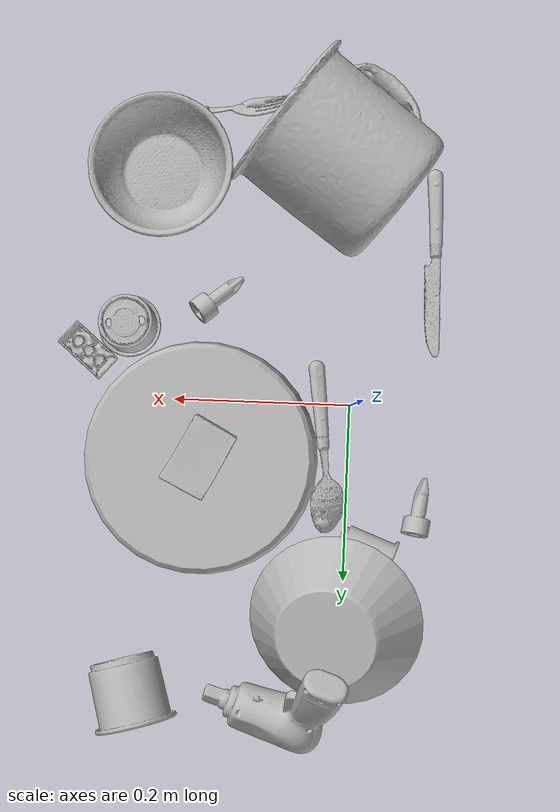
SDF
<sdf version="1.4">
  <world name="default">
    <light name="light1" type="point">
      <pose>0 0 1 0 0 0</pose>
      <diffuse>3 3 3 1</diffuse>
      <specular>3 3 3 1</specular>
    </light>
    <light name="light2" type="point">
      <pose>0 0.5 2 0 0 0</pose>
      <diffuse>1 1 1 1</diffuse>
      <specular>1 1 1 1</specular>
    </light>
    <light name="light3" type="point">
      <pose>0 0.5 2 0 0 0</pose>
      <diffuse>3 3 3 1</diffuse>
      <specular>3 3 3 1</specular>
    </light>
    <scene>
      <ambient>0.7 0.7 0.7</ambient>
    </scene>
    <model name="plate1">
      <link name="link_plate1">
        <collision name="default">
          <geometry>
            <mesh>
              <uri>model://pan_tefal/collision_meshes/collision.obj</uri>
              <scale>1.0 1.0 1.0</scale>
            </mesh>
          </geometry>
          <surface>
            <friction>
              <ode>
                <mu>0.5</mu>
                <mu2>0.5</mu2>
              </ode>
            </friction>
          <contact>
        <ode>
            <max_vel>0</max_vel>
            <min_depth>0.0001</min_depth>
            <kp>1e8</kp>
        </ode>
    </contact></surface>
        </collision>
        <visual name="default">
          <geometry>
            <mesh>
              <uri>model://pan_tefal/visual_meshes/visual.dae</uri>
              <scale>1.0 1.0 1.0</scale>
            </mesh>
          </geometry>
        </visual>
        <inertial>
          <mass>1.356081485748291</mass>
          <pose>-0.00018001878925133497 3.2792810088722035e-05 -0.008514934219419956 0.000819032333381865 -0.0003301471985614655 -0.33185384828338066</pose>
          <inertia>
            <ixx>0.009360965</ixx>
            <iyy>0.009421317</iyy>
            <izz>0.017231734</izz>
            <ixy>0</ixy>
            <ixz>0</ixz>
            <iyz>0</iyz>
          </inertia>
        </inertial>
      </link>
      <pose>0.1661146879196167 0.06535527855157852 0.037822019308805466 -3.141592650754992 6.444880838148838e-09 1.4591970775201388</pose>
    </model>
    <model name="cup1">
      <link name="link_cup1">
        <collision name="default">
          <geometry>
            <mesh>
              <uri>model://mug/collision_meshes/collision.obj</uri>
              <scale>2.0 2.0 2.0</scale>
            </mesh>
          </geometry>
          <surface>
            <friction>
              <ode>
                <mu>0.5</mu>
                <mu2>0.5</mu2>
              </ode>
            </friction>
          <contact>
        <ode>
            <max_vel>0</max_vel>
            <min_depth>0.0001</min_depth>
            <kp>1e8</kp>
        </ode>
    </contact></surface>
        </collision>
        <visual name="default">
          <geometry>
            <mesh>
              <uri>model://mug/visual_meshes/visual.dae</uri>
              <scale>2.0 2.0 2.0</scale>
            </mesh>
          </geometry>
        </visual>
        <inertial>
          <mass>1.425228476524353</mass>
          <pose>0.019143342971801758 0.0016286519821733236 -0.021894657984375954 -0.12983169455958588 0.08737743422724535 0.05507285753370488</pose>
          <inertia>
            <ixx>0.005662833</ixx>
            <iyy>0.0063250507</iyy>
            <izz>0.0073150056</izz>
            <ixy>0</ixy>
            <ixz>0</ixz>
            <iyz>0</iyz>
          </inertia>
        </inertial>
      </link>
      <pose>0.013271942734718323 -0.2834729552268982 0.07338308542966843 1.4728035215127675 -0.5622062527593443 0.9913323598921019</pose>
    </model>
    <model name="silverware1">
      <link name="link_silverware1">
        <collision name="default">
          <geometry>
            <mesh>
              <uri>model://spoon/collision_meshes/collision.obj</uri>
              <scale>1.0 1.0 1.0</scale>
            </mesh>
          </geometry>
          <surface>
            <friction>
              <ode>
                <mu>0.5</mu>
                <mu2>0.5</mu2>
              </ode>
            </friction>
          <contact>
        <ode>
            <max_vel>0</max_vel>
            <min_depth>0.0001</min_depth>
            <kp>1e8</kp>
        </ode>
    </contact></surface>
        </collision>
        <visual name="default">
          <geometry>
            <mesh>
              <uri>model://spoon/visual_meshes/visual.dae</uri>
              <scale>1.0 1.0 1.0</scale>
            </mesh>
          </geometry>
        </visual>
        <inertial>
          <mass>0.031423501670360565</mass>
          <pose>-0.005526318680495024 -0.0016034176805987954 -0.000727165665011853 0.035217765619004186 -0.03906586018731898 0.006150610672177042</pose>
          <inertia>
            <ixx>1.7478262e-06</ixx>
            <iyy>0.0001195654</iyy>
            <izz>0.000120427336</izz>
            <ixy>0</ixy>
            <ixz>0</ixz>
            <iyz>0</iyz>
          </inertia>
        </inertial>
      </link>
      <pose>0.030557701364159584 0.048839714378118515 0.011887849308550358 2.797820599941204 -0.06190300147029589 1.6918736391216904</pose>
    </model>
    <model name="silverware2">
      <link name="link_silverware2">
        <collision name="default">
          <geometry>
            <mesh>
              <uri>model://fork/collision_meshes/collision.obj</uri>
              <scale>1.0 1.0 1.0</scale>
            </mesh>
          </geometry>
          <surface>
            <friction>
              <ode>
                <mu>0.5</mu>
                <mu2>0.5</mu2>
              </ode>
            </friction>
          <contact>
        <ode>
            <max_vel>0</max_vel>
            <min_depth>0.0001</min_depth>
            <kp>1e8</kp>
        </ode>
    </contact></surface>
        </collision>
        <visual name="default">
          <geometry>
            <mesh>
              <uri>model://fork/visual_meshes/visual.dae</uri>
              <scale>1.0 1.0 1.0</scale>
            </mesh>
          </geometry>
        </visual>
        <inertial>
          <mass>0.02368462271988392</mass>
          <pose>-0.02957003191113472 0.00046588238910771906 0.00032188621116802096 -0.013550757689210725 -0.010977831639922976 0.014453892765665301</pose>
          <inertia>
            <ixx>8.3028004e-07</ixx>
            <iyy>6.183376e-05</iyy>
            <izz>6.220513e-05</izz>
            <ixy>0</ixy>
            <ixz>0</ixz>
            <iyz>0</iyz>
          </inertia>
        </inertial>
      </link>
      <pose>0.1749652624130249 -0.3295922577381134 0.009330951608717442 -0.6521369972326789 -0.001711076561257836 -3.030643946384857</pose>
    </model>
    <model name="silverware3">
      <link name="link_silverware3">
        <collision name="default">
          <geometry>
            <mesh>
              <uri>model://knife/collision_meshes/collision.obj</uri>
              <scale>1.0 1.0 1.0</scale>
            </mesh>
          </geometry>
          <surface>
            <friction>
              <ode>
                <mu>0.5</mu>
                <mu2>0.5</mu2>
              </ode>
            </friction>
          <contact>
        <ode>
            <max_vel>0</max_vel>
            <min_depth>0.0001</min_depth>
            <kp>1e8</kp>
        </ode>
    </contact></surface>
        </collision>
        <visual name="default">
          <geometry>
            <mesh>
              <uri>model://knife/visual_meshes/visual.dae</uri>
              <scale>1.0 1.0 1.0</scale>
            </mesh>
          </geometry>
        </visual>
        <inertial>
          <mass>0.023530498147010803</mass>
          <pose>-0.023785250261425972 0.0015275124460458755 5.062020863988437e-05 0.07305757972864607 0.01724841573343299 -0.007409825279630946</pose>
          <inertia>
            <ixx>6.678909e-07</ixx>
            <iyy>9.040038e-05</iyy>
            <izz>9.0615475e-05</izz>
            <ixy>0</ixy>
            <ixz>0</ixz>
            <iyz>0</iyz>
          </inertia>
        </inertial>
      </link>
      <pose>-0.0895133838057518 -0.16559889912605286 0.007946522906422615 -0.023907890482071134 -0.014542512977394584 1.5890617145269097</pose>
    </model>
    <model name="cup3">
      <link name="link_cup3">
        <collision name="default">
          <geometry>
            <mesh>
              <uri>model://b_cups/collision_meshes/collision.obj</uri>
              <scale>1.0 1.0 1.0</scale>
            </mesh>
          </geometry>
          <surface>
            <friction>
              <ode>
                <mu>0.5</mu>
                <mu2>0.5</mu2>
              </ode>
            </friction>
          <contact>
        <ode>
            <max_vel>0</max_vel>
            <min_depth>0.0001</min_depth>
            <kp>1e8</kp>
        </ode>
    </contact></surface>
        </collision>
        <visual name="default">
          <geometry>
            <mesh>
              <uri>model://b_cups/visual_meshes/visual.dae</uri>
              <scale>1.0 1.0 1.0</scale>
            </mesh>
          </geometry>
        </visual>
        <inertial>
          <mass>0.033049143850803375</mass>
          <pose>0.0005182002205401659 0.001805859967134893 -0.0013381808530539274 0.11356265792291019 0.03872585472979472 -0.3457023826899558</pose>
          <inertia>
            <ixx>2.1632983e-05</ixx>
            <iyy>2.1222275e-05</iyy>
            <izz>1.8203747e-05</izz>
            <ixy>0</ixy>
            <ixz>0</ixz>
            <iyz>0</iyz>
          </inertia>
        </inertial>
      </link>
      <pose>-0.019197827205061913 0.16735464334487915 0.027815813198685646 -1.4714609385777333 0.45163280725620225 1.2331193700151781</pose>
    </model>
    <model name="cup4">
      <link name="link_cup4">
        <collision name="default">
          <geometry>
            <mesh>
              <uri>model://h_cups/collision_meshes/collision.obj</uri>
              <scale>1.0 1.0 1.0</scale>
            </mesh>
          </geometry>
          <surface>
            <friction>
              <ode>
                <mu>0.5</mu>
                <mu2>0.5</mu2>
              </ode>
            </friction>
          <contact>
        <ode>
            <max_vel>0</max_vel>
            <min_depth>0.0001</min_depth>
            <kp>1e8</kp>
        </ode>
    </contact></surface>
        </collision>
        <visual name="default">
          <geometry>
            <mesh>
              <uri>model://h_cups/visual_meshes/visual.dae</uri>
              <scale>1.0 1.0 1.0</scale>
            </mesh>
          </geometry>
        </visual>
        <inertial>
          <mass>0.11347958445549011</mass>
          <pose>-2.7030910132452846e-05 0.00023018615320324898 -0.0018405403243377805 -0.02436217983877791 0.06545222634893223 0.12885210457354207</pose>
          <inertia>
            <ixx>0.0001465536</ixx>
            <iyy>0.00014480477</iyy>
            <izz>0.00015369456</izz>
            <ixy>0</ixy>
            <ixz>0</ixz>
            <iyz>0</iyz>
          </inertia>
        </inertial>
      </link>
      <pose>0.23402979969978333 0.3257596790790558 0.04224468022584915 1.3259178995722551 1.0950136493409797 -3.086855351187253</pose>
    </model>
    <model name="cup5">
      <link name="link_cup5">
        <collision name="default">
          <geometry>
            <mesh>
              <uri>model://d_cups/collision_meshes/collision.obj</uri>
              <scale>1.0 1.0 1.0</scale>
            </mesh>
          </geometry>
          <surface>
            <friction>
              <ode>
                <mu>0.5</mu>
                <mu2>0.5</mu2>
              </ode>
            </friction>
          <contact>
        <ode>
            <max_vel>0</max_vel>
            <min_depth>0.0001</min_depth>
            <kp>1e8</kp>
        </ode>
    </contact></surface>
        </collision>
        <visual name="default">
          <geometry>
            <mesh>
              <uri>model://d_cups/visual_meshes/visual.dae</uri>
              <scale>1.0 1.0 1.0</scale>
            </mesh>
          </geometry>
        </visual>
        <inertial>
          <mass>0.039110079407691956</mass>
          <pose>0.0008068050956353545 0.0019117392366752028 -0.0022666517179459333 0.24011224021147495 -0.247107611945545 0.594295747375292</pose>
          <inertia>
            <ixx>3.2744327e-05</ixx>
            <iyy>3.2649565e-05</iyy>
            <izz>2.9639183e-05</izz>
            <ixy>0</ixy>
            <ixz>0</ixz>
            <iyz>0</iyz>
          </inertia>
        </inertial>
      </link>
      <pose>0.2533288896083832 -0.08149350434541702 0.03448901325464249 3.141592542236837 -2.312180065185452e-08 0.6938401469892159</pose>
    </model>
    <model name="bowl1">
      <link name="link_bowl1">
        <collision name="default">
          <geometry>
            <mesh>
              <uri>model://bowl/collision_meshes/collision.obj</uri>
              <scale>1.0 1.0 1.0</scale>
            </mesh>
          </geometry>
          <surface>
            <friction>
              <ode>
                <mu>0.5</mu>
                <mu2>0.5</mu2>
              </ode>
            </friction>
          <contact>
        <ode>
            <max_vel>0</max_vel>
            <min_depth>0.0001</min_depth>
            <kp>1e8</kp>
        </ode>
    </contact></surface>
        </collision>
        <visual name="default">
          <geometry>
            <mesh>
              <uri>model://bowl/visual_meshes/visual.dae</uri>
              <scale>1.0 1.0 1.0</scale>
            </mesh>
          </geometry>
        </visual>
        <inertial>
          <mass>0.04740063101053238</mass>
          <pose>0.00020445372501853853 -0.001030205050483346 -0.000804265437182039 -0.015764138065403298 0.014546740803255881 0.7140373892972721</pose>
          <inertia>
            <ixx>0.00010888298</ixx>
            <iyy>0.000106450105</iyy>
            <izz>0.00018317858</izz>
            <ixy>0</ixy>
            <ixz>0</ixz>
            <iyz>0</iyz>
          </inertia>
        </inertial>
      </link>
      <pose>0.22217600047588348 -0.2585035264492035 0.02778000384569168 -5.441307290441346e-08 1.2550310953531204e-07 0.6610974260878697</pose>
    </model>
    <model name="bowl2">
      <link name="link_bowl2">
        <collision name="default">
          <geometry>
            <mesh>
              <uri>model://bowl_a/collision_meshes/collision.obj</uri>
              <scale>1.0 1.0 1.0</scale>
            </mesh>
          </geometry>
          <surface>
            <friction>
              <ode>
                <mu>0.5</mu>
                <mu2>0.5</mu2>
              </ode>
            </friction>
          <contact>
        <ode>
            <max_vel>0</max_vel>
            <min_depth>0.0001</min_depth>
            <kp>1e8</kp>
        </ode>
    </contact></surface>
        </collision>
        <visual name="default">
          <geometry>
            <mesh>
              <uri>model://bowl_a/visual_meshes/visual.dae</uri>
              <scale>1.0 1.0 1.0</scale>
            </mesh>
          </geometry>
        </visual>
        <inertial>
          <mass>0.4596928358078003</mass>
          <pose>0.0002786756376735866 4.731212538899854e-05 -0.001376529224216938 -0.0009805332698969178 -0.0010938264579112213 -0.1912378887702168</pose>
          <inertia>
            <ixx>0.0013087663</ixx>
            <iyy>0.0013168014</iyy>
            <izz>0.002327691</izz>
            <ixy>0</ixy>
            <ixz>0</ixz>
            <iyz>0</iyz>
          </inertia>
        </inertial>
      </link>
      <pose>0.015710793435573578 0.2480366826057434 0.059755437076091766 -2.9160114352733686 0.24430226688650786 1.5759876825682957</pose>
    </model>
    <model name="toy1">
      <link name="link_toy1">
        <collision name="default">
          <geometry>
            <mesh>
              <uri>model://d_toy_airplane/collision_meshes/collision.obj</uri>
              <scale>1.0 1.0 1.0</scale>
            </mesh>
          </geometry>
          <surface>
            <friction>
              <ode>
                <mu>0.5</mu>
                <mu2>0.5</mu2>
              </ode>
            </friction>
          <contact>
        <ode>
            <max_vel>0</max_vel>
            <min_depth>0.0001</min_depth>
            <kp>1e8</kp>
        </ode>
    </contact></surface>
        </collision>
        <visual name="default">
          <geometry>
            <mesh>
              <uri>model://d_toy_airplane/visual_meshes/visual.dae</uri>
              <scale>1.0 1.0 1.0</scale>
            </mesh>
          </geometry>
        </visual>
        <inertial>
          <mass>0.017302583903074265</mass>
          <pose>9.410295751877129e-05 -5.809326466987841e-05 -0.011728093028068542 0.00026573120399734447 0.004679044314999465 0.5192011935173154</pose>
          <inertia>
            <ixx>5.1869783e-06</ixx>
            <iyy>5.190892e-06</iyy>
            <izz>1.5659823e-06</izz>
            <ixy>0</ixy>
            <ixz>0</ixz>
            <iyz>0</iyz>
          </inertia>
        </inertial>
      </link>
      <pose>0.1515865921974182 -0.11888342350721359 0.011460824869573116 1.923637855374845 -0.9526113336832149 -1.164932834978528</pose>
    </model>
    <model name="toy2">
      <link name="link_toy2">
        <collision name="default">
          <geometry>
            <mesh>
              <uri>model://b_toy_airplane/collision_meshes/collision.obj</uri>
              <scale>1.0 1.0 1.0</scale>
            </mesh>
          </geometry>
          <surface>
            <friction>
              <ode>
                <mu>0.5</mu>
                <mu2>0.5</mu2>
              </ode>
            </friction>
          <contact>
        <ode>
            <max_vel>0</max_vel>
            <min_depth>0.0001</min_depth>
            <kp>1e8</kp>
        </ode>
    </contact></surface>
        </collision>
        <visual name="default">
          <geometry>
            <mesh>
              <uri>model://b_toy_airplane/visual_meshes/visual.dae</uri>
              <scale>1.0 1.0 1.0</scale>
            </mesh>
          </geometry>
        </visual>
        <inertial>
          <mass>0.45341360569000244</mass>
          <pose>0.00508136535063386 0.004015584941953421 0.00954306498169899 -0.04001809497736226 -0.04022180630889015 -0.560150289687741</pose>
          <inertia>
            <ixx>0.0008417707</ixx>
            <iyy>0.00033646397</iyy>
            <izz>0.0010472467</izz>
            <ixy>0</ixy>
            <ixz>0</ixz>
            <iyz>0</iyz>
          </inertia>
        </inertial>
      </link>
      <pose>0.05255407467484474 0.33277252316474915 0.04337121546268463 -0.8722668076030989 0.00992777289017279 -0.3418687329276878</pose>
    </model>
    <model name="toy3">
      <link name="link_toy3">
        <collision name="default">
          <geometry>
            <mesh>
              <uri>model://a_lego_duplo/collision_meshes/collision.obj</uri>
              <scale>1.0 1.0 1.0</scale>
            </mesh>
          </geometry>
          <surface>
            <friction>
              <ode>
                <mu>0.5</mu>
                <mu2>0.5</mu2>
              </ode>
            </friction>
          <contact>
        <ode>
            <max_vel>0</max_vel>
            <min_depth>0.0001</min_depth>
            <kp>1e8</kp>
        </ode>
    </contact></surface>
        </collision>
        <visual name="default">
          <geometry>
            <mesh>
              <uri>model://a_lego_duplo/visual_meshes/visual.dae</uri>
              <scale>1.0 1.0 1.0</scale>
            </mesh>
          </geometry>
        </visual>
        <inertial>
          <mass>0.019445955753326416</mass>
          <pose>-0.00011337668547639623 0.0001851754350354895 0.00036926064058206975 -0.014116968054253443 -0.00012565964371363686 6.142473690124929e-05</pose>
          <inertia>
            <ixx>2.4931269e-06</ixx>
            <iyy>5.58515e-06</iyy>
            <izz>6.9184516e-06</izz>
            <ixy>0</ixy>
            <ixz>0</ixz>
            <iyz>0</iyz>
          </inertia>
        </inertial>
      </link>
      <pose>0.2974919080734253 -0.050980258733034134 0.012124747969210148 -3.141298250439895 -0.015580011848946692 2.4262651737318865</pose>
    </model>
    <model name="toy4">
      <link name="link_toy4">
        <collision name="default">
          <geometry>
            <mesh>
              <uri>model://foam_brick/collision_meshes/collision.obj</uri>
              <scale>1.0 1.0 1.0</scale>
            </mesh>
          </geometry>
          <surface>
            <friction>
              <ode>
                <mu>0.5</mu>
                <mu2>0.5</mu2>
              </ode>
            </friction>
          <contact>
        <ode>
            <max_vel>0</max_vel>
            <min_depth>0.0001</min_depth>
            <kp>1e8</kp>
        </ode>
    </contact></surface>
        </collision>
        <visual name="default">
          <geometry>
            <mesh>
              <uri>model://foam_brick/visual_meshes/visual.dae</uri>
              <scale>1.0 1.0 1.0</scale>
            </mesh>
          </geometry>
        </visual>
        <inertial>
          <mass>0.18476375937461853</mass>
          <pose>-0.00025224717683158815 0.0003458433784544468 -0.00025321010616607964 -0.2940193708875024 0.01727444338713918 -0.0007449870082442464</pose>
          <inertia>
            <ixx>8.070827e-05</ixx>
            <iyy>0.00012885487</iyy>
            <izz>0.00013049248</izz>
            <ixy>0</ixy>
            <ixz>0</ixz>
            <iyz>0</iyz>
          </inertia>
        </inertial>
      </link>
      <pose>0.16478915512561798 0.06373444944620132 0.10187602788209915 3.1290770248069943 0.01080914271865438 1.0847549063974498</pose>
    </model>
    <model name="toy5">
      <link name="link_toy5">
        <collision name="default">
          <geometry>
            <mesh>
              <uri>model://e_toy_airplane/collision_meshes/collision.obj</uri>
              <scale>1.0 1.0 1.0</scale>
            </mesh>
          </geometry>
          <surface>
            <friction>
              <ode>
                <mu>0.5</mu>
                <mu2>0.5</mu2>
              </ode>
            </friction>
          <contact>
        <ode>
            <max_vel>0</max_vel>
            <min_depth>0.0001</min_depth>
            <kp>1e8</kp>
        </ode>
    </contact></surface>
        </collision>
        <visual name="default">
          <geometry>
            <mesh>
              <uri>model://e_toy_airplane/visual_meshes/visual.dae</uri>
              <scale>1.0 1.0 1.0</scale>
            </mesh>
          </geometry>
        </visual>
        <inertial>
          <mass>0.01085815578699112</mass>
          <pose>0.00011740455374820158 -2.248299279017374e-05 -0.011187206953763962 0.005518501127689679 0.009228289957601814 0.15041514141603637</pose>
          <inertia>
            <ixx>3.3140323e-06</ixx>
            <iyy>3.2801318e-06</iyy>
            <izz>9.959974e-07</izz>
            <ixy>0</ixy>
            <ixz>0</ixz>
            <iyz>0</iyz>
          </inertia>
        </inertial>
      </link>
      <pose>-0.08297184854745865 0.11131210625171661 0.012221223674714565 1.7424972463221726 -0.14002818790320626 -0.20766933786199238</pose>
    </model>
  <physics type="ode">
      <max_contacts>50</max_contacts>
      <ode>
        <solver>
          <type>quick</type>
          <iters>75</iters>
        </solver>
        <constraints>
          <contact_max_correcting_vel>0</contact_max_correcting_vel>
          <contact_surface_layer>0</contact_surface_layer>
        </constraints>
      </ode>
    </physics></world>
</sdf>
